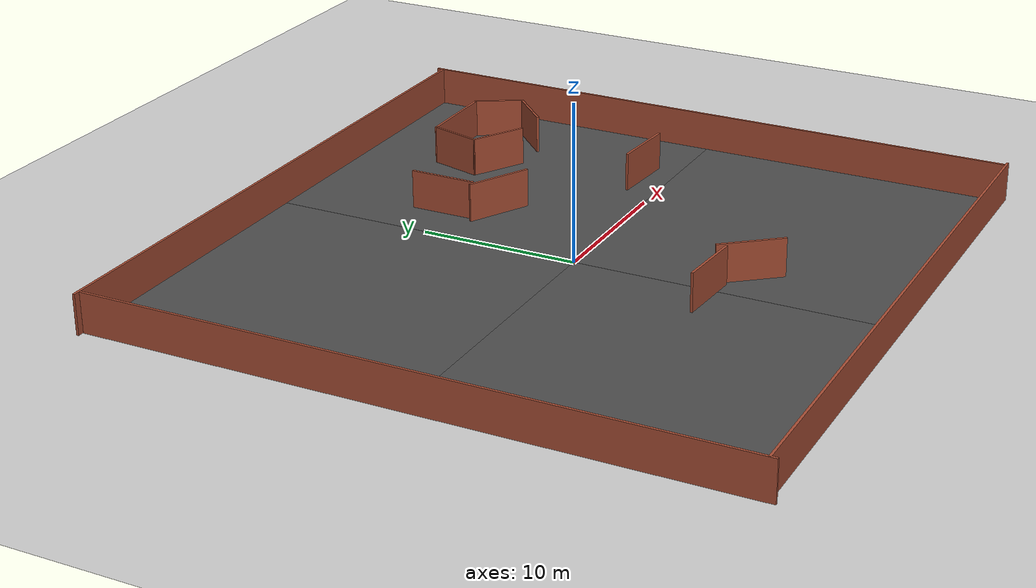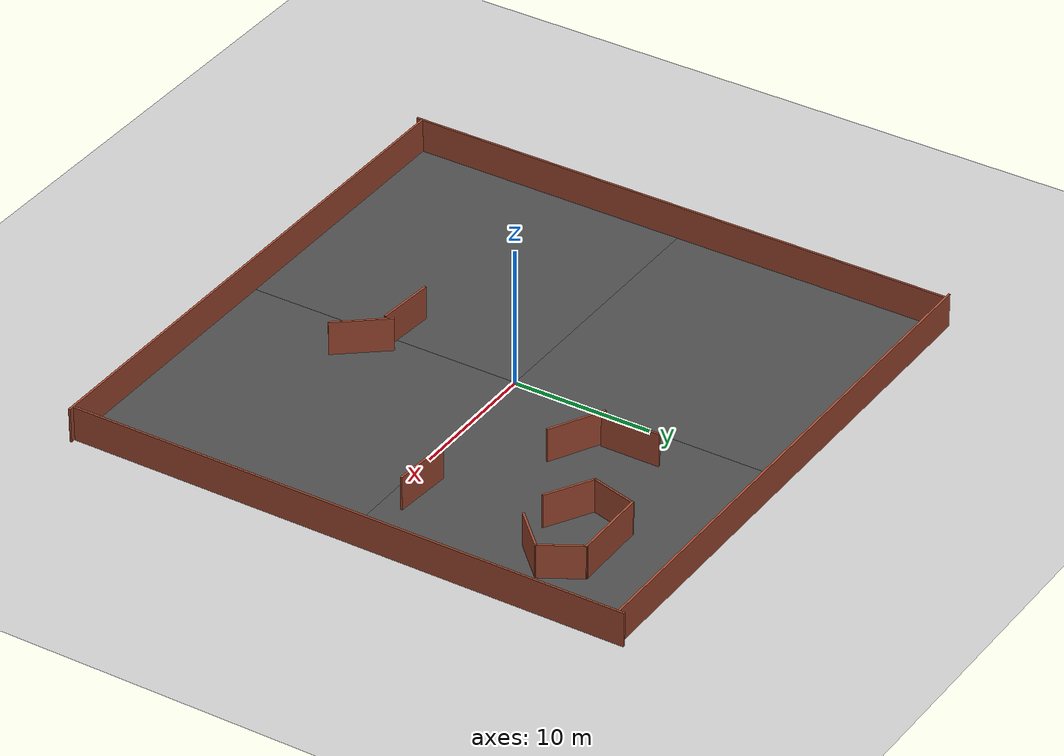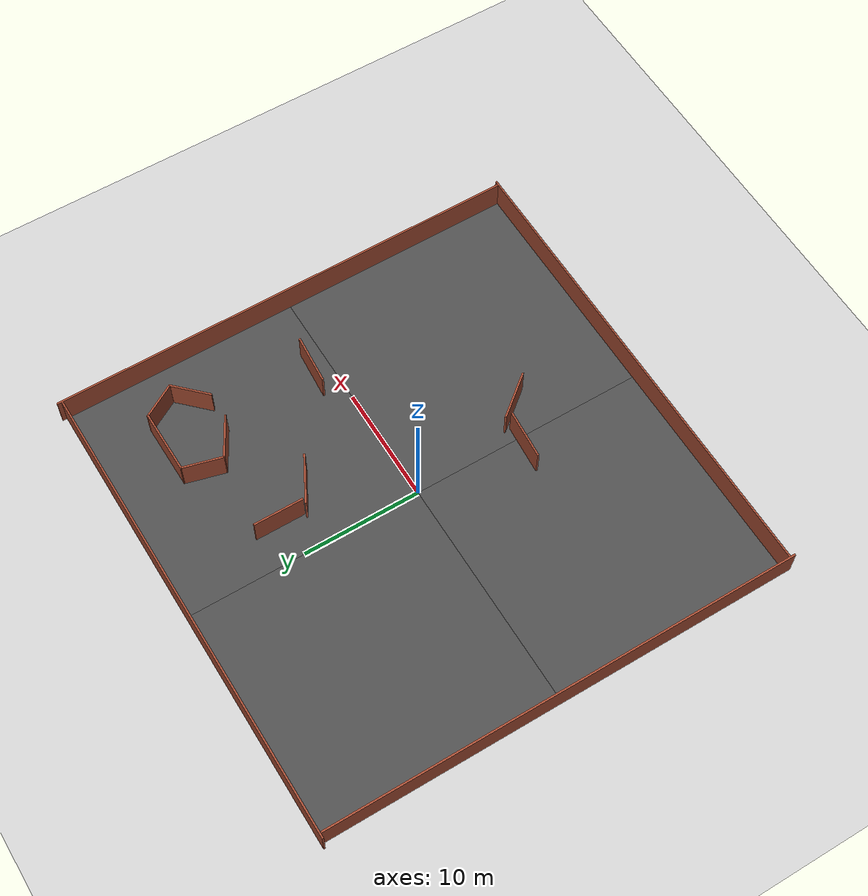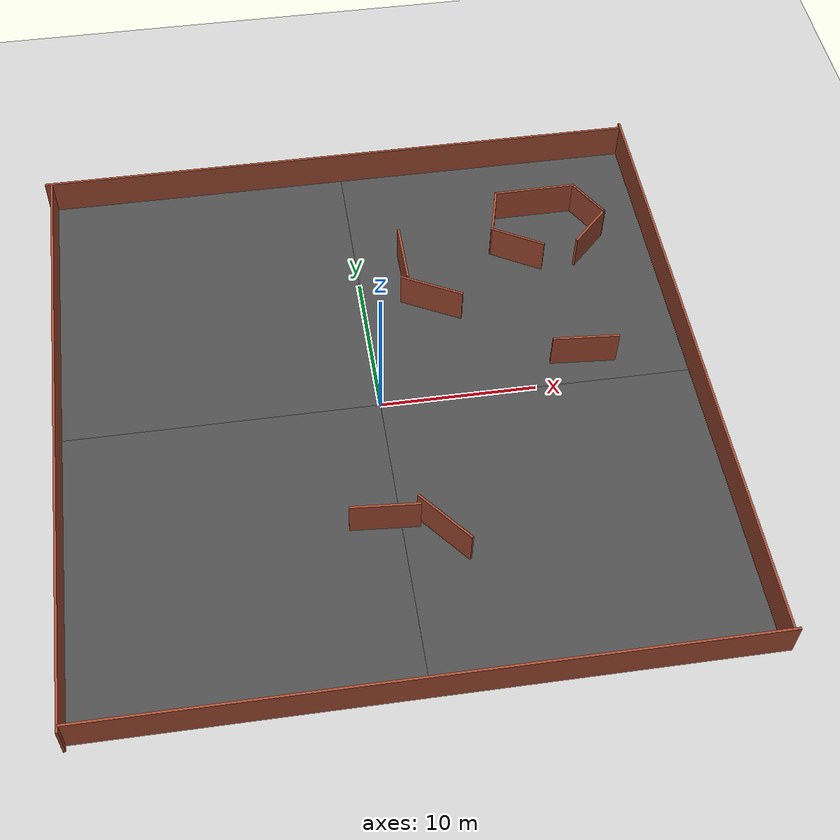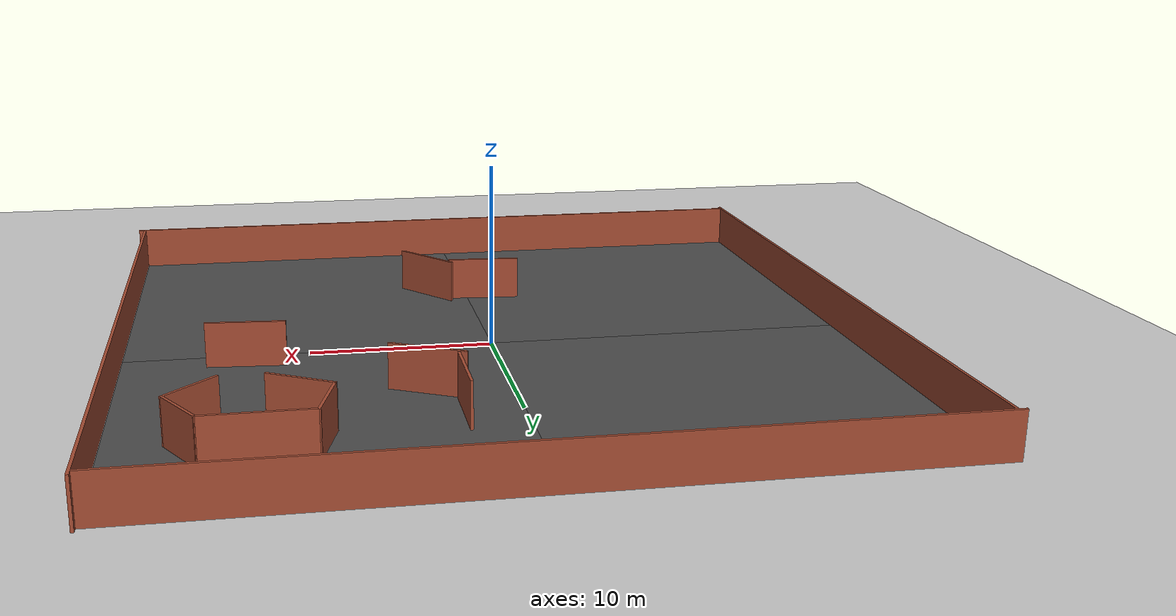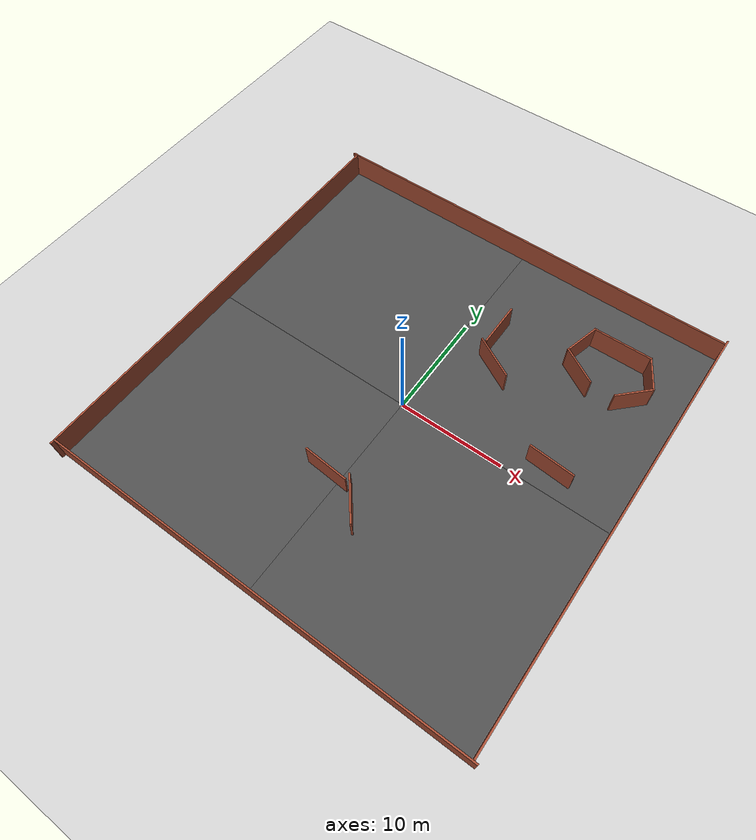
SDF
<sdf version="1.5">
 <world name="default">
  <light name="sun" type="directional">
   <pose>0 0 10 0 -0 0</pose>
   <diffuse>0.8 0.8 0.8 1</diffuse>
   <specular>0.2 0.2 0.2 1</specular>
   <attenuation>
    <range>1000</range>
    <constant>0.9</constant>
    <linear>0.01</linear>
    <quadratic>0.001</quadratic>
   </attenuation>
   <direction>-0.5 0.1 -0.9</direction>
  </light>
  <model name="ground_plane">
   <static>1</static>
   <link name="link">
    <collision name="collision">
     <geometry><plane><normal>0 0 1</normal><size>100 100</size></plane></geometry>
     <surface><friction><ode><mu>100</mu><mu2>50</mu2></ode></friction></surface>
    </collision>
    <visual name="visual">
     <cast_shadows>0</cast_shadows>
     <geometry><plane><normal>0 0 1</normal><size>100 100</size></plane></geometry>
     <material>
      <script><uri>file://media/materials/scripts/gazebo.material</uri><name>Gazebo/Grey</name></script>
     </material>
    </visual>
   </link>
  </model>
  <physics name="default_physics" default="0" type="ode">
   <max_step_size>0.001</max_step_size>
   <real_time_factor>1</real_time_factor>
   <real_time_update_rate>1000</real_time_update_rate>
   <gravity>0 0 -9.8</gravity>
   <magnetic_field>5.5645e-06 2.28758e-05 -4.23884e-05</magnetic_field>
  </physics>
  <scene><ambient>0.4 0.4 0.4 1</ambient><background>0.7 0.7 0.7 1</background><shadows>1</shadows></scene>
  <spherical_coordinates>
   <surface_model>EARTH_WGS84</surface_model>
   <latitude_deg>0</latitude_deg>
   <longitude_deg>0</longitude_deg>
   <elevation>0</elevation>
   <heading_deg>0</heading_deg>
  </spherical_coordinates>
  <model name="asphalt_plane">
   <static>1</static>
   <link name="link">
    <collision name="collision"><geometry><box><size>20 20 0.1</size></box></geometry></collision>
    <visual name="visual">
     <cast_shadows>0</cast_shadows>
     <geometry><box><size>20 20 0.1</size></box></geometry>
     <material>
      <script>
       <uri>model://asphalt_plane/materials/scripts</uri>
       <uri>model://asphalt_plane/materials/textures</uri>
       <name>vrc/asphalt</name>
      </script>
     </material>
    </visual>
   </link>
   <pose>10 10 0 0 -0 0</pose>
  </model>
  <model name="asphalt_plane_0">
   <static>1</static>
   <link name="link">
    <collision name="collision"><geometry><box><size>20 20 0.1</size></box></geometry></collision>
    <visual name="visual">
     <cast_shadows>0</cast_shadows>
     <geometry><box><size>20 20 0.1</size></box></geometry>
     <material>
      <script>
       <uri>model://asphalt_plane/materials/scripts</uri>
       <uri>model://asphalt_plane/materials/textures</uri>
       <name>vrc/asphalt</name>
      </script>
     </material>
    </visual>
   </link>
   <pose>-10 10 0 0 -0 0</pose>
  </model>
  <model name="asphalt_plane_1">
   <static>1</static>
   <link name="link">
    <collision name="collision"><geometry><box><size>20 20 0.1</size></box></geometry></collision>
    <visual name="visual">
     <cast_shadows>0</cast_shadows>
     <geometry><box><size>20 20 0.1</size></box></geometry>
     <material>
      <script>
       <uri>model://asphalt_plane/materials/scripts</uri>
       <uri>model://asphalt_plane/materials/textures</uri>
       <name>vrc/asphalt</name>
      </script>
     </material>
    </visual>
   </link>
   <pose>-10 -10 0 0 -0 0</pose>
  </model>
  <model name="asphalt_plane_2">
   <static>1</static>
   <link name="link">
    <collision name="collision"><geometry><box><size>20 20 0.1</size></box></geometry></collision>
    <visual name="visual">
     <cast_shadows>0</cast_shadows>
     <geometry><box><size>20 20 0.1</size></box></geometry>
     <material>
      <script>
       <uri>model://asphalt_plane/materials/scripts</uri>
       <uri>model://asphalt_plane/materials/textures</uri>
       <name>vrc/asphalt</name>
      </script>
     </material>
    </visual>
   </link>
   <pose>10 -10 0 0 -0 0</pose>
  </model>
  <model name="longwall">
   <pose>0.229981 -20.0786 0 0 -0 0</pose>
   <link name="Wall_0">
    <collision name="Wall_0_Collision">
     <geometry><box><size>40.5 0.15 2.5</size></box></geometry>
     <pose>0 0 1.25 0 -0 0</pose>
    </collision>
    <visual name="Wall_0_Visual">
     <pose>0 0 1.25 0 -0 0</pose>
     <geometry><box><size>40.5 0.15 2.5</size></box></geometry>
     <material>
      <script><uri>file://media/materials/scripts/gazebo.material</uri><name>Gazebo/Bricks</name></script>
      <ambient>1 1 1 1</ambient>
     </material>
    </visual>
    <pose>1e-06 0 0 0 -0 0</pose>
   </link>
   <static>1</static>
  </model>
  <model name="longwall_0">
   <pose>-20.0177 -0.255752 0 0 0 -1.57092</pose>
   <link name="Wall_0">
    <collision name="Wall_0_Collision">
     <geometry><box><size>40.5 0.15 2.5</size></box></geometry>
     <pose>0 0 1.25 0 -0 0</pose>
    </collision>
    <visual name="Wall_0_Visual">
     <pose>0 0 1.25 0 -0 0</pose>
     <geometry><box><size>40.5 0.15 2.5</size></box></geometry>
     <material>
      <script><uri>file://media/materials/scripts/gazebo.material</uri><name>Gazebo/Bricks</name></script>
      <ambient>1 1 1 1</ambient>
     </material>
    </visual>
    <pose>1e-06 0 0 0 -0 0</pose>
   </link>
   <static>1</static>
  </model>
  <model name="longwall_0_clone">
   <pose>20.1053 0.258056 0 0 0 -1.57092</pose>
   <link name="Wall_0">
    <collision name="Wall_0_Collision">
     <geometry><box><size>40.5 0.15 2.5</size></box></geometry>
     <pose>0 0 1.25 0 -0 0</pose>
    </collision>
    <visual name="Wall_0_Visual">
     <pose>0 0 1.25 0 -0 0</pose>
     <geometry><box><size>40.5 0.15 2.5</size></box></geometry>
     <material>
      <script><uri>file://media/materials/scripts/gazebo.material</uri><name>Gazebo/Bricks</name></script>
      <ambient>1 1 1 1</ambient>
     </material>
    </visual>
    <pose>1e-06 0 0 0 -0 0</pose>
   </link>
   <static>1</static>
  </model>
  <model name="longwall_clone">
   <pose>-0.214439 20.0862 0 0 -0 0</pose>
   <link name="Wall_0">
    <collision name="Wall_0_Collision">
     <geometry><box><size>40.5 0.15 2.5</size></box></geometry>
     <pose>0 0 1.25 0 -0 0</pose>
    </collision>
    <visual name="Wall_0_Visual">
     <pose>0 0 1.25 0 -0 0</pose>
     <geometry><box><size>40.5 0.15 2.5</size></box></geometry>
     <material>
      <script><uri>file://media/materials/scripts/gazebo.material</uri><name>Gazebo/Bricks</name></script>
      <ambient>1 1 1 1</ambient>
     </material>
    </visual>
    <pose>1e-06 0 0 0 -0 0</pose>
   </link>
   <static>1</static>
  </model>
  <model name="room1">
   <pose>13.1523 12.4323 0 0 -0 0</pose>
   <link name="Wall_11">
    <collision name="Wall_11_Collision">
     <geometry><box><size>3.25 0.15 2.5</size></box></geometry>
     <pose>0 0 1.25 0 -0 0</pose>
    </collision>
    <visual name="Wall_11_Visual">
     <pose>0 0 1.25 0 -0 0</pose>
     <geometry><box><size>3.25 0.15 2.5</size></box></geometry>
     <material>
      <script><uri>file://media/materials/scripts/gazebo.material</uri><name>Gazebo/Bricks</name></script>
      <ambient>1 1 1 1</ambient>
     </material>
    </visual>
    <pose>3.12132 1.19483 0 0 0 -1.0472</pose>
   </link>
   <link name="Wall_12">
    <collision name="Wall_12_Collision">
     <geometry><box><size>3.5 0.15 2.5</size></box></geometry>
     <pose>0 0 1.25 0 -0 0</pose>
    </collision>
    <visual name="Wall_12_Visual">
     <pose>0 0 1.25 0 -0 0</pose>
     <geometry><box><size>3.5 0.15 2.5</size></box></geometry>
     <material>
      <script><uri>file://media/materials/scripts/gazebo.material</uri><name>Gazebo/Bricks</name></script>
      <ambient>1 1 1 1</ambient>
     </material>
    </visual>
    <pose>2.71192 -1.33192 0 0 0 -2.35619</pose>
   </link>
   <link name="Wall_7">
    <collision name="Wall_7_Collision">
     <geometry><box><size>5.52935 0.15 2.5</size></box></geometry>
     <pose>0 0 1.25 0 -0 0</pose>
    </collision>
    <visual name="Wall_7_Visual">
     <pose>0 0 1.25 0 -0 0</pose>
     <geometry><box><size>5.52935 0.15 2.5</size></box></geometry>
     <material>
      <script><uri>file://media/materials/scripts/gazebo.material</uri><name>Gazebo/Bricks</name></script>
      <ambient>1 1 1 1</ambient>
     </material>
    </visual>
    <pose>-0.343285 2.51793 0 0 0 -3.13444</pose>
   </link>
   <link name="Wall_8">
    <collision name="Wall_8_Collision">
     <geometry><box><size>3.5 0.15 2.5</size></box></geometry>
     <pose>0 0 1.25 0 -0 0</pose>
    </collision>
    <visual name="Wall_8_Visual">
     <pose>0 0 1.25 0 -0 0</pose>
     <geometry><box><size>3.5 0.15 2.5</size></box></geometry>
     <material>
      <script><uri>file://media/materials/scripts/gazebo.material</uri><name>Gazebo/Bricks</name></script>
      <ambient>1 1 1 1</ambient>
     </material>
    </visual>
    <pose>-3.46641 0.880761 0 0 0 -1.8326</pose>
   </link>
   <link name="Wall_9">
    <collision name="Wall_9_Collision">
     <geometry><box><size>3.75 0.15 2.5</size></box></geometry>
     <pose>0 0 1.25 0 -0 0</pose>
    </collision>
    <visual name="Wall_9_Visual">
     <pose>0 0 1.25 0 -0 0</pose>
     <geometry><box><size>3.75 0.15 2.5</size></box></geometry>
     <material>
      <script><uri>file://media/materials/scripts/gazebo.material</uri><name>Gazebo/Bricks</name></script>
      <ambient>1 1 1 1</ambient>
     </material>
    </visual>
    <pose>-2.34109 -1.63716 0 0 0 -0.523599</pose>
   </link>
   <static>1</static>
  </model>
  <model name="worlds_0">
   <pose>13.4106 1.66749 0 0 -0 1.49697</pose>
   <link name="Wall_0">
    <collision name="Wall_0_Collision">
     <geometry><box><size>4.25 0.15 2.5</size></box></geometry>
     <pose>0 0 1.25 0 -0 0</pose>
    </collision>
    <visual name="Wall_0_Visual">
     <pose>0 0 1.25 0 -0 0</pose>
     <geometry><box><size>4.25 0.15 2.5</size></box></geometry>
     <material>
      <script><uri>file://media/materials/scripts/gazebo.material</uri><name>Gazebo/Bricks</name></script>
      <ambient>1 1 1 1</ambient>
     </material>
    </visual>
    <pose>0 -0 0 0 -0 1.5708</pose>
   </link>
   <static>1</static>
  </model>
  <model name="worlds_1">
   <pose>3 10.4406 0 0 -0 0</pose>
   <link name="Wall_0">
    <collision name="Wall_0_Collision">
     <geometry><box><size>4.25 0.15 2.5</size></box></geometry>
     <pose>0 0 1.25 0 -0 0</pose>
    </collision>
    <visual name="Wall_0_Visual">
     <pose>0 0 1.25 0 -0 0</pose>
     <geometry><box><size>4.25 0.15 2.5</size></box></geometry>
     <material>
      <script><uri>file://media/materials/scripts/gazebo.material</uri><name>Gazebo/Bricks</name></script>
      <ambient>1 1 1 1</ambient>
     </material>
    </visual>
    <pose>0 -0 0 0 -0 1.5708</pose>
   </link>
   <static>1</static>
  </model>
  <model name="worlds_2">
   <pose>4.42901 7.33195 0 0 -0 1.08023</pose>
   <link name="Wall_0">
    <collision name="Wall_0_Collision">
     <geometry><box><size>4.25 0.15 2.5</size></box></geometry>
     <pose>0 0 1.25 0 -0 0</pose>
    </collision>
    <visual name="Wall_0_Visual">
     <pose>0 0 1.25 0 -0 0</pose>
     <geometry><box><size>4.25 0.15 2.5</size></box></geometry>
     <material>
      <script><uri>file://media/materials/scripts/gazebo.material</uri><name>Gazebo/Bricks</name></script>
      <ambient>1 1 1 1</ambient>
     </material>
    </visual>
    <pose>0 -0 0 0 -0 1.5708</pose>
   </link>
   <static>1</static>
  </model>
  <model name="worlds_0_clone">
   <pose>-1 -9 0 0 -0 1.49697</pose>
   <link name="Wall_0">
    <collision name="Wall_0_Collision">
     <geometry><box><size>4.25 0.15 2.5</size></box></geometry>
     <pose>0 0 1.25 0 -0 0</pose>
    </collision>
    <visual name="Wall_0_Visual">
     <pose>0 0 1.25 0 -0 0</pose>
     <geometry><box><size>4.25 0.15 2.5</size></box></geometry>
     <material>
      <script><uri>file://media/materials/scripts/gazebo.material</uri><name>Gazebo/Bricks</name></script>
      <ambient>1 1 1 1</ambient>
     </material>
    </visual>
    <pose>0 -0 0 0 -0 1.5708</pose>
   </link>
   <static>1</static>
  </model>
  <model name="worlds_2_clone">
   <pose>2.34689 -10.1873 0 0 -0 0.676911</pose>
   <link name="Wall_0">
    <collision name="Wall_0_Collision">
     <geometry><box><size>4.25 0.15 2.5</size></box></geometry>
     <pose>0 0 1.25 0 -0 0</pose>
    </collision>
    <visual name="Wall_0_Visual">
     <pose>0 0 1.25 0 -0 0</pose>
     <geometry><box><size>4.25 0.15 2.5</size></box></geometry>
     <material>
      <script><uri>file://media/materials/scripts/gazebo.material</uri><name>Gazebo/Bricks</name></script>
      <ambient>1 1 1 1</ambient>
     </material>
    </visual>
    <pose>0 -0 0 0 -0 1.5708</pose>
   </link>
   <static>1</static>
  </model>
 </world>
</sdf>
